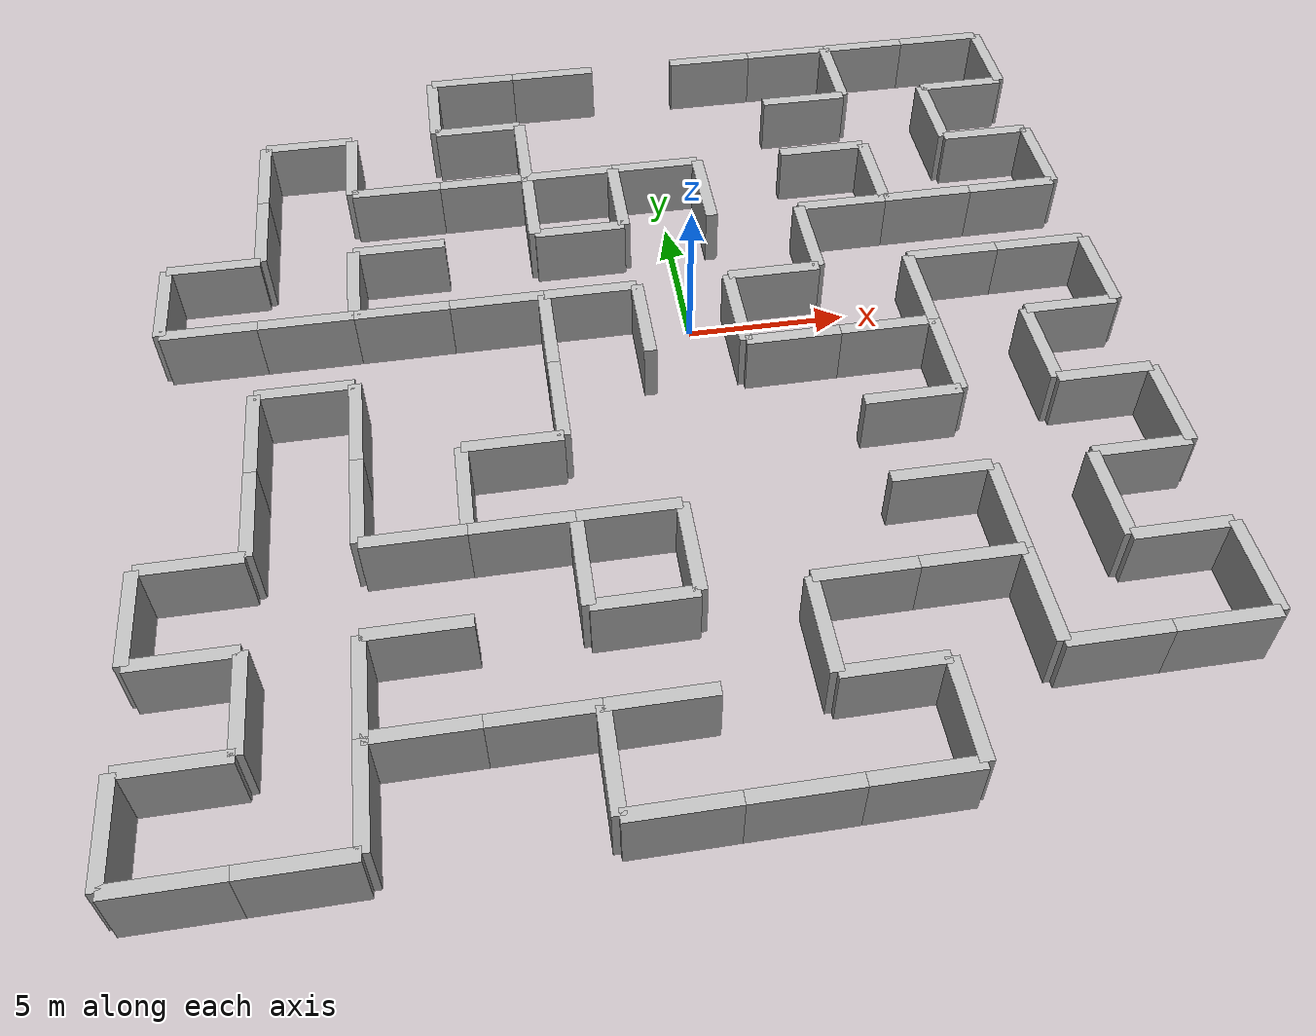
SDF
<sdf version="1.9"> <model name="maze_walls"><static>true</static><pose>-15 -15 0 0 0 0</pose><link name="leftWall3"> <pose>7.5 27 0 0 0 0</pose> <collision name="leftWall3collision"> <geometry> <box> <size>0.4 3 2.0</size> </box> </geometry> </collision> <visual name="leftWall3visual"> <geometry> <box> <size>0.4 3 2.0</size> </box> </geometry> </visual> </link><link name="downWall3"> <pose>9 25.5 0 0 0 0</pose> <collision name="downWall3collision"> <geometry> <box> <size>3 0.4 2.0</size> </box> </geometry> </collision> <visual name="downWall3visual"> <geometry> <box> <size>3 0.4 2.0</size> </box> </geometry> </visual> </link><link name="upWall3"> <pose>9 28.5 0 0 0 0</pose> <collision name="upWall3collision"> <geometry> <box> <size>3 0.4 2.0</size> </box> </geometry> </collision> <visual name="upWall3visual"> <geometry> <box> <size>3 0.4 2.0</size> </box> </geometry> </visual> </link><link name="upWall4"> <pose>12 28.5 0 0 0 0</pose> <collision name="upWall4collision"> <geometry> <box> <size>3 0.4 2.0</size> </box> </geometry> </collision> <visual name="upWall4visual"> <geometry> <box> <size>3 0.4 2.0</size> </box> </geometry> </visual> </link><link name="upWall6"> <pose>18 28.5 0 0 0 0</pose> <collision name="upWall6collision"> <geometry> <box> <size>3 0.4 2.0</size> </box> </geometry> </collision> <visual name="upWall6visual"> <geometry> <box> <size>3 0.4 2.0</size> </box> </geometry> </visual> </link><link name="rightWall7"> <pose>22.5 27 0 0 0 0</pose> <collision name="rightWall7collision"> <geometry> <box> <size>0.4 3 2.0</size> </box> </geometry> </collision> <visual name="rightWall7visual"> <geometry> <box> <size>0.4 3 2.0</size> </box> </geometry> </visual> </link><link name="downWall7"> <pose>21 25.5 0 0 0 0</pose> <collision name="downWall7collision"> <geometry> <box> <size>3 0.4 2.0</size> </box> </geometry> </collision> <visual name="downWall7visual"> <geometry> <box> <size>3 0.4 2.0</size> </box> </geometry> </visual> </link><link name="upWall7"> <pose>21 28.5 0 0 0 0</pose> <collision name="upWall7collision"> <geometry> <box> <size>3 0.4 2.0</size> </box> </geometry> </collision> <visual name="upWall7visual"> <geometry> <box> <size>3 0.4 2.0</size> </box> </geometry> </visual> </link><link name="upWall8"> <pose>24 28.5 0 0 0 0</pose> <collision name="upWall8collision"> <geometry> <box> <size>3 0.4 2.0</size> </box> </geometry> </collision> <visual name="upWall8visual"> <geometry> <box> <size>3 0.4 2.0</size> </box> </geometry> </visual> </link><link name="rightWall9"> <pose>28.5 27 0 0 0 0</pose> <collision name="rightWall9collision"> <geometry> <box> <size>0.4 3 2.0</size> </box> </geometry> </collision> <visual name="rightWall9visual"> <geometry> <box> <size>0.4 3 2.0</size> </box> </geometry> </visual> </link><link name="downWall9"> <pose>27 25.5 0 0 0 0</pose> <collision name="downWall9collision"> <geometry> <box> <size>3 0.4 2.0</size> </box> </geometry> </collision> <visual name="downWall9visual"> <geometry> <box> <size>3 0.4 2.0</size> </box> </geometry> </visual> </link><link name="upWall9"> <pose>27 28.5 0 0 0 0</pose> <collision name="upWall9collision"> <geometry> <box> <size>3 0.4 2.0</size> </box> </geometry> </collision> <visual name="upWall9visual"> <geometry> <box> <size>3 0.4 2.0</size> </box> </geometry> </visual> </link><link name="leftWall11"> <pose>1.5 24 0 0 0 0</pose> <collision name="leftWall11collision"> <geometry> <box> <size>0.4 3 2.0</size> </box> </geometry> </collision> <visual name="leftWall11visual"> <geometry> <box> <size>0.4 3 2.0</size> </box> </geometry> </visual> </link><link name="rightWall11"> <pose>4.5 24 0 0 0 0</pose> <collision name="rightWall11collision"> <geometry> <box> <size>0.4 3 2.0</size> </box> </geometry> </collision> <visual name="rightWall11visual"> <geometry> <box> <size>0.4 3 2.0</size> </box> </geometry> </visual> </link><link name="upWall11"> <pose>3 25.5 0 0 0 0</pose> <collision name="upWall11collision"> <geometry> <box> <size>3 0.4 2.0</size> </box> </geometry> </collision> <visual name="upWall11visual"> <geometry> <box> <size>3 0.4 2.0</size> </box> </geometry> </visual> </link><link name="leftWall14"> <pose>10.5 24 0 0 0 0</pose> <collision name="leftWall14collision"> <geometry> <box> <size>0.4 3 2.0</size> </box> </geometry> </collision> <visual name="leftWall14visual"> <geometry> <box> <size>0.4 3 2.0</size> </box> </geometry> </visual> </link><link name="downWall14"> <pose>12 22.5 0 0 0 0</pose> <collision name="downWall14collision"> <geometry> <box> <size>3 0.4 2.0</size> </box> </geometry> </collision> <visual name="downWall14visual"> <geometry> <box> <size>3 0.4 2.0</size> </box> </geometry> </visual> </link><link name="rightWall18"> <pose>25.5 24 0 0 0 0</pose> <collision name="rightWall18collision"> <geometry> <box> <size>0.4 3 2.0</size> </box> </geometry> </collision> <visual name="rightWall18visual"> <geometry> <box> <size>0.4 3 2.0</size> </box> </geometry> </visual> </link><link name="leftWall21"> <pose>1.5 21 0 0 0 0</pose> <collision name="leftWall21collision"> <geometry> <box> <size>0.4 3 2.0</size> </box> </geometry> </collision> <visual name="leftWall21visual"> <geometry> <box> <size>0.4 3 2.0</size> </box> </geometry> </visual> </link><link name="upWall22"> <pose>6 22.5 0 0 0 0</pose> <collision name="upWall22collision"> <geometry> <box> <size>3 0.4 2.0</size> </box> </geometry> </collision> <visual name="upWall22visual"> <geometry> <box> <size>3 0.4 2.0</size> </box> </geometry> </visual> </link><link name="rightWall23"> <pose>10.5 21 0 0 0 0</pose> <collision name="rightWall23collision"> <geometry> <box> <size>0.4 3 2.0</size> </box> </geometry> </collision> <visual name="rightWall23visual"> <geometry> <box> <size>0.4 3 2.0</size> </box> </geometry> </visual> </link><link name="upWall23"> <pose>9 22.5 0 0 0 0</pose> <collision name="upWall23collision"> <geometry> <box> <size>3 0.4 2.0</size> </box> </geometry> </collision> <visual name="upWall23visual"> <geometry> <box> <size>3 0.4 2.0</size> </box> </geometry> </visual> </link><link name="leftWall25"> <pose>13.5 21 0 0 0 0</pose> <collision name="leftWall25collision"> <geometry> <box> <size>0.4 3 2.0</size> </box> </geometry> </collision> <visual name="leftWall25visual"> <geometry> <box> <size>0.4 3 2.0</size> </box> </geometry> </visual> </link><link name="rightWall25"> <pose>16.5 21 0 0 0 0</pose> <collision name="rightWall25collision"> <geometry> <box> <size>0.4 3 2.0</size> </box> </geometry> </collision> <visual name="rightWall25visual"> <geometry> <box> <size>0.4 3 2.0</size> </box> </geometry> </visual> </link><link name="upWall25"> <pose>15 22.5 0 0 0 0</pose> <collision name="upWall25collision"> <geometry> <box> <size>3 0.4 2.0</size> </box> </geometry> </collision> <visual name="upWall25visual"> <geometry> <box> <size>3 0.4 2.0</size> </box> </geometry> </visual> </link><link name="rightWall27"> <pose>22.5 21 0 0 0 0</pose> <collision name="rightWall27collision"> <geometry> <box> <size>0.4 3 2.0</size> </box> </geometry> </collision> <visual name="rightWall27visual"> <geometry> <box> <size>0.4 3 2.0</size> </box> </geometry> </visual> </link><link name="downWall27"> <pose>21 19.5 0 0 0 0</pose> <collision name="downWall27collision"> <geometry> <box> <size>3 0.4 2.0</size> </box> </geometry> </collision> <visual name="downWall27visual"> <geometry> <box> <size>3 0.4 2.0</size> </box> </geometry> </visual> </link><link name="upWall27"> <pose>21 22.5 0 0 0 0</pose> <collision name="upWall27collision"> <geometry> <box> <size>3 0.4 2.0</size> </box> </geometry> </collision> <visual name="upWall27visual"> <geometry> <box> <size>3 0.4 2.0</size> </box> </geometry> </visual> </link><link name="downWall28"> <pose>24 19.5 0 0 0 0</pose> <collision name="downWall28collision"> <geometry> <box> <size>3 0.4 2.0</size> </box> </geometry> </collision> <visual name="downWall28visual"> <geometry> <box> <size>3 0.4 2.0</size> </box> </geometry> </visual> </link><link name="rightWall29"> <pose>28.5 21 0 0 0 0</pose> <collision name="rightWall29collision"> <geometry> <box> <size>0.4 3 2.0</size> </box> </geometry> </collision> <visual name="rightWall29visual"> <geometry> <box> <size>0.4 3 2.0</size> </box> </geometry> </visual> </link><link name="downWall29"> <pose>27 19.5 0 0 0 0</pose> <collision name="downWall29collision"> <geometry> <box> <size>3 0.4 2.0</size> </box> </geometry> </collision> <visual name="downWall29visual"> <geometry> <box> <size>3 0.4 2.0</size> </box> </geometry> </visual> </link><link name="upWall29"> <pose>27 22.5 0 0 0 0</pose> <collision name="upWall29collision"> <geometry> <box> <size>3 0.4 2.0</size> </box> </geometry> </collision> <visual name="upWall29visual"> <geometry> <box> <size>3 0.4 2.0</size> </box> </geometry> </visual> </link><link name="leftWall30"> <pose>-1.5 18 0 0 0 0</pose> <collision name="leftWall30collision"> <geometry> <box> <size>0.4 3 2.0</size> </box> </geometry> </collision> <visual name="leftWall30visual"> <geometry> <box> <size>0.4 3 2.0</size> </box> </geometry> </visual> </link><link name="downWall30"> <pose>0 16.5 0 0 0 0</pose> <collision name="downWall30collision"> <geometry> <box> <size>3 0.4 2.0</size> </box> </geometry> </collision> <visual name="downWall30visual"> <geometry> <box> <size>3 0.4 2.0</size> </box> </geometry> </visual> </link><link name="upWall30"> <pose>0 19.5 0 0 0 0</pose> <collision name="upWall30collision"> <geometry> <box> <size>3 0.4 2.0</size> </box> </geometry> </collision> <visual name="upWall30visual"> <geometry> <box> <size>3 0.4 2.0</size> </box> </geometry> </visual> </link><link name="downWall31"> <pose>3 16.5 0 0 0 0</pose> <collision name="downWall31collision"> <geometry> <box> <size>3 0.4 2.0</size> </box> </geometry> </collision> <visual name="downWall31visual"> <geometry> <box> <size>3 0.4 2.0</size> </box> </geometry> </visual> </link><link name="leftWall32"> <pose>4.5 18 0 0 0 0</pose> <collision name="leftWall32collision"> <geometry> <box> <size>0.4 3 2.0</size> </box> </geometry> </collision> <visual name="leftWall32visual"> <geometry> <box> <size>0.4 3 2.0</size> </box> </geometry> </visual> </link><link name="downWall32"> <pose>6 16.5 0 0 0 0</pose> <collision name="downWall32collision"> <geometry> <box> <size>3 0.4 2.0</size> </box> </geometry> </collision> <visual name="downWall32visual"> <geometry> <box> <size>3 0.4 2.0</size> </box> </geometry> </visual> </link><link name="upWall32"> <pose>6 19.5 0 0 0 0</pose> <collision name="upWall32collision"> <geometry> <box> <size>3 0.4 2.0</size> </box> </geometry> </collision> <visual name="upWall32visual"> <geometry> <box> <size>3 0.4 2.0</size> </box> </geometry> </visual> </link><link name="downWall33"> <pose>9 16.5 0 0 0 0</pose> <collision name="downWall33collision"> <geometry> <box> <size>3 0.4 2.0</size> </box> </geometry> </collision> <visual name="downWall33visual"> <geometry> <box> <size>3 0.4 2.0</size> </box> </geometry> </visual> </link><link name="upWall34"> <pose>12 19.5 0 0 0 0</pose> <collision name="upWall34collision"> <geometry> <box> <size>3 0.4 2.0</size> </box> </geometry> </collision> <visual name="upWall34visual"> <geometry> <box> <size>3 0.4 2.0</size> </box> </geometry> </visual> </link><link name="rightWall36"> <pose>19.5 18 0 0 0 0</pose> <collision name="rightWall36collision"> <geometry> <box> <size>0.4 3 2.0</size> </box> </geometry> </collision> <visual name="rightWall36visual"> <geometry> <box> <size>0.4 3 2.0</size> </box> </geometry> </visual> </link><link name="downWall36"> <pose>18 16.5 0 0 0 0</pose> <collision name="downWall36collision"> <geometry> <box> <size>3 0.4 2.0</size> </box> </geometry> </collision> <visual name="downWall36visual"> <geometry> <box> <size>3 0.4 2.0</size> </box> </geometry> </visual> </link><link name="leftWall44"> <pose>10.5 15 0 0 0 0</pose> <collision name="leftWall44collision"> <geometry> <box> <size>0.4 3 2.0</size> </box> </geometry> </collision> <visual name="leftWall44visual"> <geometry> <box> <size>0.4 3 2.0</size> </box> </geometry> </visual> </link><link name="rightWall44"> <pose>13.5 15 0 0 0 0</pose> <collision name="rightWall44collision"> <geometry> <box> <size>0.4 3 2.0</size> </box> </geometry> </collision> <visual name="rightWall44visual"> <geometry> <box> <size>0.4 3 2.0</size> </box> </geometry> </visual> </link><link name="upWall44"> <pose>12 16.5 0 0 0 0</pose> <collision name="upWall44collision"> <geometry> <box> <size>3 0.4 2.0</size> </box> </geometry> </collision> <visual name="upWall44visual"> <geometry> <box> <size>3 0.4 2.0</size> </box> </geometry> </visual> </link><link name="rightWall45"> <pose>16.5 15 0 0 0 0</pose> <collision name="rightWall45collision"> <geometry> <box> <size>0.4 3 2.0</size> </box> </geometry> </collision> <visual name="rightWall45visual"> <geometry> <box> <size>0.4 3 2.0</size> </box> </geometry> </visual> </link><link name="leftWall48"> <pose>22.5 15 0 0 0 0</pose> <collision name="leftWall48collision"> <geometry> <box> <size>0.4 3 2.0</size> </box> </geometry> </collision> <visual name="leftWall48visual"> <geometry> <box> <size>0.4 3 2.0</size> </box> </geometry> </visual> </link><link name="upWall48"> <pose>24 16.5 0 0 0 0</pose> <collision name="upWall48collision"> <geometry> <box> <size>3 0.4 2.0</size> </box> </geometry> </collision> <visual name="upWall48visual"> <geometry> <box> <size>3 0.4 2.0</size> </box> </geometry> </visual> </link><link name="rightWall49"> <pose>28.5 15 0 0 0 0</pose> <collision name="rightWall49collision"> <geometry> <box> <size>0.4 3 2.0</size> </box> </geometry> </collision> <visual name="rightWall49visual"> <geometry> <box> <size>0.4 3 2.0</size> </box> </geometry> </visual> </link><link name="downWall49"> <pose>27 13.5 0 0 0 0</pose> <collision name="downWall49collision"> <geometry> <box> <size>3 0.4 2.0</size> </box> </geometry> </collision> <visual name="downWall49visual"> <geometry> <box> <size>3 0.4 2.0</size> </box> </geometry> </visual> </link><link name="upWall49"> <pose>27 16.5 0 0 0 0</pose> <collision name="upWall49collision"> <geometry> <box> <size>3 0.4 2.0</size> </box> </geometry> </collision> <visual name="upWall49visual"> <geometry> <box> <size>3 0.4 2.0</size> </box> </geometry> </visual> </link><link name="leftWall51"> <pose>1.5 12 0 0 0 0</pose> <collision name="leftWall51collision"> <geometry> <box> <size>0.4 3 2.0</size> </box> </geometry> </collision> <visual name="leftWall51visual"> <geometry> <box> <size>0.4 3 2.0</size> </box> </geometry> </visual> </link><link name="rightWall51"> <pose>4.5 12 0 0 0 0</pose> <collision name="rightWall51collision"> <geometry> <box> <size>0.4 3 2.0</size> </box> </geometry> </collision> <visual name="rightWall51visual"> <geometry> <box> <size>0.4 3 2.0</size> </box> </geometry> </visual> </link><link name="upWall51"> <pose>3 13.5 0 0 0 0</pose> <collision name="upWall51collision"> <geometry> <box> <size>3 0.4 2.0</size> </box> </geometry> </collision> <visual name="upWall51visual"> <geometry> <box> <size>3 0.4 2.0</size> </box> </geometry> </visual> </link><link name="leftWall54"> <pose>10.5 12 0 0 0 0</pose> <collision name="leftWall54collision"> <geometry> <box> <size>0.4 3 2.0</size> </box> </geometry> </collision> <visual name="leftWall54visual"> <geometry> <box> <size>0.4 3 2.0</size> </box> </geometry> </visual> </link><link name="upWall56"> <pose>18 13.5 0 0 0 0</pose> <collision name="upWall56collision"> <geometry> <box> <size>3 0.4 2.0</size> </box> </geometry> </collision> <visual name="upWall56visual"> <geometry> <box> <size>3 0.4 2.0</size> </box> </geometry> </visual> </link><link name="rightWall57"> <pose>22.5 12 0 0 0 0</pose> <collision name="rightWall57collision"> <geometry> <box> <size>0.4 3 2.0</size> </box> </geometry> </collision> <visual name="rightWall57visual"> <geometry> <box> <size>0.4 3 2.0</size> </box> </geometry> </visual> </link><link name="downWall57"> <pose>21 10.5 0 0 0 0</pose> <collision name="downWall57collision"> <geometry> <box> <size>3 0.4 2.0</size> </box> </geometry> </collision> <visual name="downWall57visual"> <geometry> <box> <size>3 0.4 2.0</size> </box> </geometry> </visual> </link><link name="upWall57"> <pose>21 13.5 0 0 0 0</pose> <collision name="upWall57collision"> <geometry> <box> <size>3 0.4 2.0</size> </box> </geometry> </collision> <visual name="upWall57visual"> <geometry> <box> <size>3 0.4 2.0</size> </box> </geometry> </visual> </link><link name="rightWall58"> <pose>25.5 12 0 0 0 0</pose> <collision name="rightWall58collision"> <geometry> <box> <size>0.4 3 2.0</size> </box> </geometry> </collision> <visual name="rightWall58visual"> <geometry> <box> <size>0.4 3 2.0</size> </box> </geometry> </visual> </link><link name="leftWall61"> <pose>1.5 9 0 0 0 0</pose> <collision name="leftWall61collision"> <geometry> <box> <size>0.4 3 2.0</size> </box> </geometry> </collision> <visual name="leftWall61visual"> <geometry> <box> <size>0.4 3 2.0</size> </box> </geometry> </visual> </link><link name="rightWall61"> <pose>4.5 9 0 0 0 0</pose> <collision name="rightWall61collision"> <geometry> <box> <size>0.4 3 2.0</size> </box> </geometry> </collision> <visual name="rightWall61visual"> <geometry> <box> <size>0.4 3 2.0</size> </box> </geometry> </visual> </link><link name="leftWall63"> <pose>7.5 9 0 0 0 0</pose> <collision name="leftWall63collision"> <geometry> <box> <size>0.4 3 2.0</size> </box> </geometry> </collision> <visual name="leftWall63visual"> <geometry> <box> <size>0.4 3 2.0</size> </box> </geometry> </visual> </link><link name="downWall63"> <pose>9 7.5 0 0 0 0</pose> <collision name="downWall63collision"> <geometry> <box> <size>3 0.4 2.0</size> </box> </geometry> </collision> <visual name="downWall63visual"> <geometry> <box> <size>3 0.4 2.0</size> </box> </geometry> </visual> </link><link name="upWall63"> <pose>9 10.5 0 0 0 0</pose> <collision name="upWall63collision"> <geometry> <box> <size>3 0.4 2.0</size> </box> </geometry> </collision> <visual name="upWall63visual"> <geometry> <box> <size>3 0.4 2.0</size> </box> </geometry> </visual> </link><link name="downWall64"> <pose>12 7.5 0 0 0 0</pose> <collision name="downWall64collision"> <geometry> <box> <size>3 0.4 2.0</size> </box> </geometry> </collision> <visual name="downWall64visual"> <geometry> <box> <size>3 0.4 2.0</size> </box> </geometry> </visual> </link><link name="rightWall69"> <pose>28.5 9 0 0 0 0</pose> <collision name="rightWall69collision"> <geometry> <box> <size>0.4 3 2.0</size> </box> </geometry> </collision> <visual name="rightWall69visual"> <geometry> <box> <size>0.4 3 2.0</size> </box> </geometry> </visual> </link><link name="downWall69"> <pose>27 7.5 0 0 0 0</pose> <collision name="downWall69collision"> <geometry> <box> <size>3 0.4 2.0</size> </box> </geometry> </collision> <visual name="downWall69visual"> <geometry> <box> <size>3 0.4 2.0</size> </box> </geometry> </visual> </link><link name="upWall69"> <pose>27 10.5 0 0 0 0</pose> <collision name="upWall69collision"> <geometry> <box> <size>3 0.4 2.0</size> </box> </geometry> </collision> <visual name="upWall69visual"> <geometry> <box> <size>3 0.4 2.0</size> </box> </geometry> </visual> </link><link name="leftWall70"> <pose>-1.5 6 0 0 0 0</pose> <collision name="leftWall70collision"> <geometry> <box> <size>0.4 3 2.0</size> </box> </geometry> </collision> <visual name="leftWall70visual"> <geometry> <box> <size>0.4 3 2.0</size> </box> </geometry> </visual> </link><link name="downWall70"> <pose>0 4.5 0 0 0 0</pose> <collision name="downWall70collision"> <geometry> <box> <size>3 0.4 2.0</size> </box> </geometry> </collision> <visual name="downWall70visual"> <geometry> <box> <size>3 0.4 2.0</size> </box> </geometry> </visual> </link><link name="upWall70"> <pose>0 7.5 0 0 0 0</pose> <collision name="upWall70collision"> <geometry> <box> <size>3 0.4 2.0</size> </box> </geometry> </collision> <visual name="upWall70visual"> <geometry> <box> <size>3 0.4 2.0</size> </box> </geometry> </visual> </link><link name="upWall72"> <pose>6 7.5 0 0 0 0</pose> <collision name="upWall72collision"> <geometry> <box> <size>3 0.4 2.0</size> </box> </geometry> </collision> <visual name="upWall72visual"> <geometry> <box> <size>3 0.4 2.0</size> </box> </geometry> </visual> </link><link name="rightWall73"> <pose>10.5 6 0 0 0 0</pose> <collision name="rightWall73collision"> <geometry> <box> <size>0.4 3 2.0</size> </box> </geometry> </collision> <visual name="rightWall73visual"> <geometry> <box> <size>0.4 3 2.0</size> </box> </geometry> </visual> </link><link name="leftWall75"> <pose>13.5 6 0 0 0 0</pose> <collision name="leftWall75collision"> <geometry> <box> <size>0.4 3 2.0</size> </box> </geometry> </collision> <visual name="leftWall75visual"> <geometry> <box> <size>0.4 3 2.0</size> </box> </geometry> </visual> </link><link name="downWall76"> <pose>18 4.5 0 0 0 0</pose> <collision name="downWall76collision"> <geometry> <box> <size>3 0.4 2.0</size> </box> </geometry> </collision> <visual name="downWall76visual"> <geometry> <box> <size>3 0.4 2.0</size> </box> </geometry> </visual> </link><link name="rightWall77"> <pose>22.5 6 0 0 0 0</pose> <collision name="rightWall77collision"> <geometry> <box> <size>0.4 3 2.0</size> </box> </geometry> </collision> <visual name="rightWall77visual"> <geometry> <box> <size>0.4 3 2.0</size> </box> </geometry> </visual> </link><link name="downWall77"> <pose>21 4.5 0 0 0 0</pose> <collision name="downWall77collision"> <geometry> <box> <size>3 0.4 2.0</size> </box> </geometry> </collision> <visual name="downWall77visual"> <geometry> <box> <size>3 0.4 2.0</size> </box> </geometry> </visual> </link><link name="upWall77"> <pose>21 7.5 0 0 0 0</pose> <collision name="upWall77collision"> <geometry> <box> <size>3 0.4 2.0</size> </box> </geometry> </collision> <visual name="upWall77visual"> <geometry> <box> <size>3 0.4 2.0</size> </box> </geometry> </visual> </link><link name="rightWall78"> <pose>25.5 6 0 0 0 0</pose> <collision name="rightWall78collision"> <geometry> <box> <size>0.4 3 2.0</size> </box> </geometry> </collision> <visual name="rightWall78visual"> <geometry> <box> <size>0.4 3 2.0</size> </box> </geometry> </visual> </link><link name="leftWall81"> <pose>1.5 3 0 0 0 0</pose> <collision name="leftWall81collision"> <geometry> <box> <size>0.4 3 2.0</size> </box> </geometry> </collision> <visual name="leftWall81visual"> <geometry> <box> <size>0.4 3 2.0</size> </box> </geometry> </visual> </link><link name="leftWall82"> <pose>4.5 3 0 0 0 0</pose> <collision name="leftWall82collision"> <geometry> <box> <size>0.4 3 2.0</size> </box> </geometry> </collision> <visual name="leftWall82visual"> <geometry> <box> <size>0.4 3 2.0</size> </box> </geometry> </visual> </link><link name="downWall82"> <pose>6 1.5 0 0 0 0</pose> <collision name="downWall82collision"> <geometry> <box> <size>3 0.4 2.0</size> </box> </geometry> </collision> <visual name="downWall82visual"> <geometry> <box> <size>3 0.4 2.0</size> </box> </geometry> </visual> </link><link name="upWall82"> <pose>6 4.5 0 0 0 0</pose> <collision name="upWall82collision"> <geometry> <box> <size>3 0.4 2.0</size> </box> </geometry> </collision> <visual name="upWall82visual"> <geometry> <box> <size>3 0.4 2.0</size> </box> </geometry> </visual> </link><link name="downWall83"> <pose>9 1.5 0 0 0 0</pose> <collision name="downWall83collision"> <geometry> <box> <size>3 0.4 2.0</size> </box> </geometry> </collision> <visual name="downWall83visual"> <geometry> <box> <size>3 0.4 2.0</size> </box> </geometry> </visual> </link><link name="upWall84"> <pose>12 4.5 0 0 0 0</pose> <collision name="upWall84collision"> <geometry> <box> <size>3 0.4 2.0</size> </box> </geometry> </collision> <visual name="upWall84visual"> <geometry> <box> <size>3 0.4 2.0</size> </box> </geometry> </visual> </link><link name="rightWall85"> <pose>16.5 3 0 0 0 0</pose> <collision name="rightWall85collision"> <geometry> <box> <size>0.4 3 2.0</size> </box> </geometry> </collision> <visual name="rightWall85visual"> <geometry> <box> <size>0.4 3 2.0</size> </box> </geometry> </visual> </link><link name="leftWall88"> <pose>22.5 3 0 0 0 0</pose> <collision name="leftWall88collision"> <geometry> <box> <size>0.4 3 2.0</size> </box> </geometry> </collision> <visual name="leftWall88visual"> <geometry> <box> <size>0.4 3 2.0</size> </box> </geometry> </visual> </link><link name="downWall88"> <pose>24 1.5 0 0 0 0</pose> <collision name="downWall88collision"> <geometry> <box> <size>3 0.4 2.0</size> </box> </geometry> </collision> <visual name="downWall88visual"> <geometry> <box> <size>3 0.4 2.0</size> </box> </geometry> </visual> </link><link name="rightWall89"> <pose>28.5 3 0 0 0 0</pose> <collision name="rightWall89collision"> <geometry> <box> <size>0.4 3 2.0</size> </box> </geometry> </collision> <visual name="rightWall89visual"> <geometry> <box> <size>0.4 3 2.0</size> </box> </geometry> </visual> </link><link name="downWall89"> <pose>27 1.5 0 0 0 0</pose> <collision name="downWall89collision"> <geometry> <box> <size>3 0.4 2.0</size> </box> </geometry> </collision> <visual name="downWall89visual"> <geometry> <box> <size>3 0.4 2.0</size> </box> </geometry> </visual> </link><link name="upWall89"> <pose>27 4.5 0 0 0 0</pose> <collision name="upWall89collision"> <geometry> <box> <size>3 0.4 2.0</size> </box> </geometry> </collision> <visual name="upWall89visual"> <geometry> <box> <size>3 0.4 2.0</size> </box> </geometry> </visual> </link><link name="leftWall90"> <pose>-1.5 0 0 0 0 0</pose> <collision name="leftWall90collision"> <geometry> <box> <size>0.4 3 2.0</size> </box> </geometry> </collision> <visual name="leftWall90visual"> <geometry> <box> <size>0.4 3 2.0</size> </box> </geometry> </visual> </link><link name="downWall90"> <pose>0 -1.5 0 0 0 0</pose> <collision name="downWall90collision"> <geometry> <box> <size>3 0.4 2.0</size> </box> </geometry> </collision> <visual name="downWall90visual"> <geometry> <box> <size>3 0.4 2.0</size> </box> </geometry> </visual> </link><link name="upWall90"> <pose>0 1.5 0 0 0 0</pose> <collision name="upWall90collision"> <geometry> <box> <size>3 0.4 2.0</size> </box> </geometry> </collision> <visual name="upWall90visual"> <geometry> <box> <size>3 0.4 2.0</size> </box> </geometry> </visual> </link><link name="rightWall91"> <pose>4.5 0 0 0 0 0</pose> <collision name="rightWall91collision"> <geometry> <box> <size>0.4 3 2.0</size> </box> </geometry> </collision> <visual name="rightWall91visual"> <geometry> <box> <size>0.4 3 2.0</size> </box> </geometry> </visual> </link><link name="downWall91"> <pose>3 -1.5 0 0 0 0</pose> <collision name="downWall91collision"> <geometry> <box> <size>3 0.4 2.0</size> </box> </geometry> </collision> <visual name="downWall91visual"> <geometry> <box> <size>3 0.4 2.0</size> </box> </geometry> </visual> </link><link name="leftWall94"> <pose>10.5 0 0 0 0 0</pose> <collision name="leftWall94collision"> <geometry> <box> <size>0.4 3 2.0</size> </box> </geometry> </collision> <visual name="leftWall94visual"> <geometry> <box> <size>0.4 3 2.0</size> </box> </geometry> </visual> </link><link name="downWall94"> <pose>12 -1.5 0 0 0 0</pose> <collision name="downWall94collision"> <geometry> <box> <size>3 0.4 2.0</size> </box> </geometry> </collision> <visual name="downWall94visual"> <geometry> <box> <size>3 0.4 2.0</size> </box> </geometry> </visual> </link><link name="upWall94"> <pose>12 1.5 0 0 0 0</pose> <collision name="upWall94collision"> <geometry> <box> <size>3 0.4 2.0</size> </box> </geometry> </collision> <visual name="upWall94visual"> <geometry> <box> <size>3 0.4 2.0</size> </box> </geometry> </visual> </link><link name="downWall95"> <pose>15 -1.5 0 0 0 0</pose> <collision name="downWall95collision"> <geometry> <box> <size>3 0.4 2.0</size> </box> </geometry> </collision> <visual name="downWall95visual"> <geometry> <box> <size>3 0.4 2.0</size> </box> </geometry> </visual> </link><link name="rightWall96"> <pose>19.5 0 0 0 0 0</pose> <collision name="rightWall96collision"> <geometry> <box> <size>0.4 3 2.0</size> </box> </geometry> </collision> <visual name="rightWall96visual"> <geometry> <box> <size>0.4 3 2.0</size> </box> </geometry> </visual> </link><link name="downWall96"> <pose>18 -1.5 0 0 0 0</pose> <collision name="downWall96collision"> <geometry> <box> <size>3 0.4 2.0</size> </box> </geometry> </collision> <visual name="downWall96visual"> <geometry> <box> <size>3 0.4 2.0</size> </box> </geometry> </visual> </link><link name="upWall96"> <pose>18 1.5 0 0 0 0</pose> <collision name="upWall96collision"> <geometry> <box> <size>3 0.4 2.0</size> </box> </geometry> </collision> <visual name="upWall96visual"> <geometry> <box> <size>3 0.4 2.0</size> </box> </geometry> </visual> </link></model></sdf>
